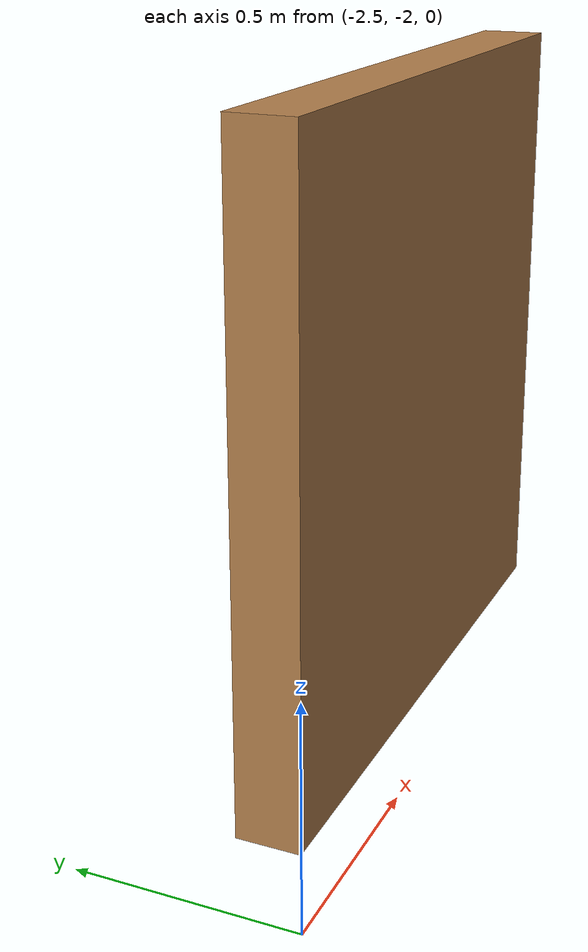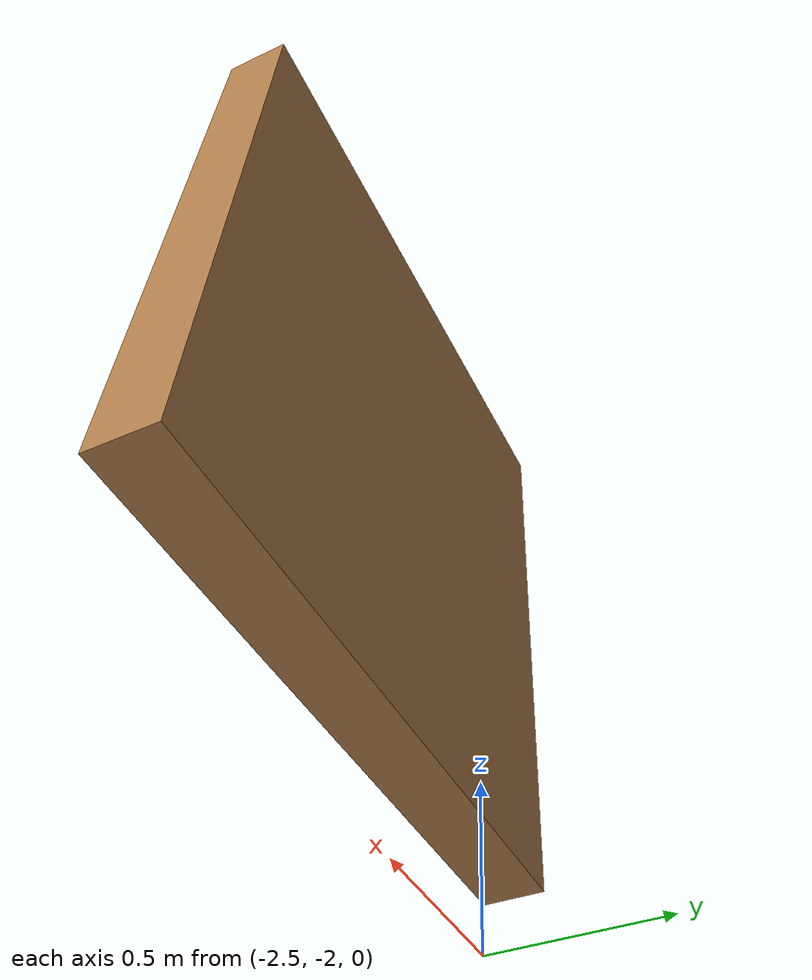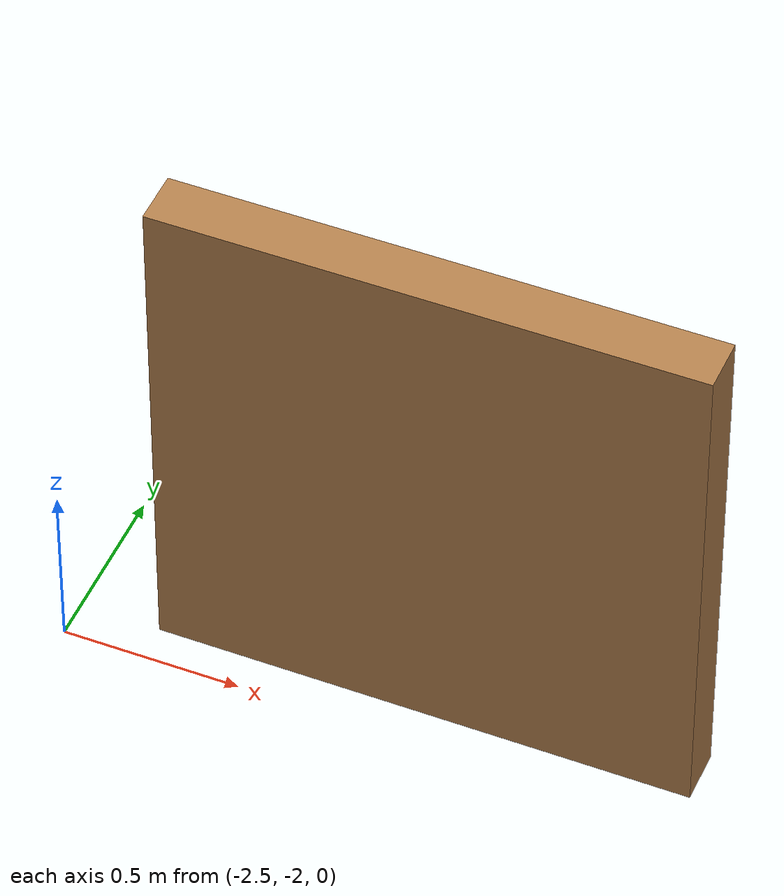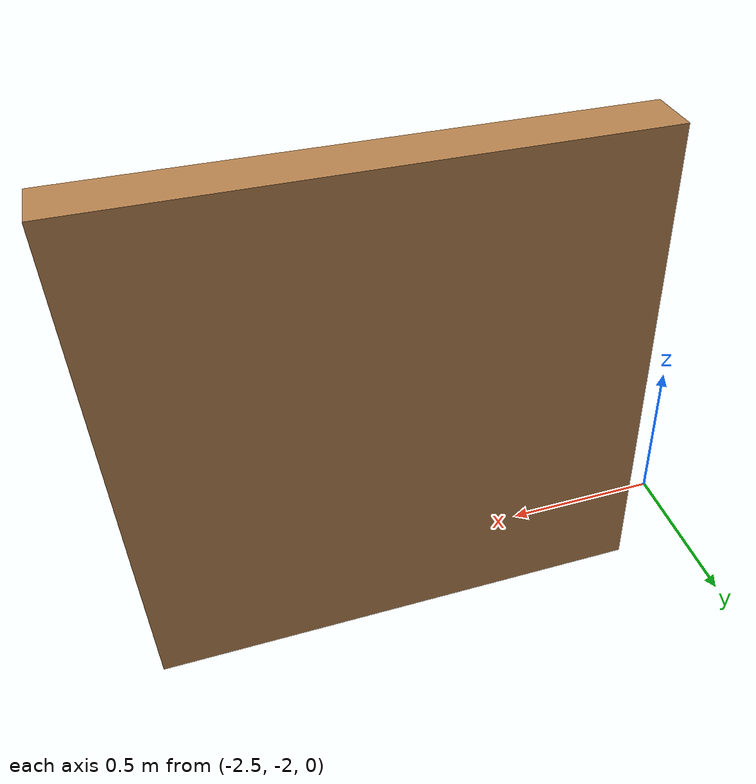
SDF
<?xml version='1.0'?>
<sdf version='1.6'>
  <model name='woll_ho'>
    <pose frame=''>-1.52374 -1.82065 0 0 -0 0</pose>
    <link name='Wall_47'>
      <collision name='Wall_47_Collision'>
        <geometry>
          <box>
            <size>1.5 0.15 1.5</size>
          </box>
        </geometry>
        <pose frame=''>0 0 0.75 0 -0 0</pose>
      </collision>
      <visual name='Wall_47_Visual'>
        <pose frame=''>0 0 0.75 0 -0 0</pose>
        <geometry>
          <box>
            <size>1.5 0.15 1.5</size>
          </box>
        </geometry>
        <material>
          <script>
            <uri>file://media/materials/scripts/gazebo.material</uri>
            <name>Gazebo/Wood</name>
          </script>
          <ambient>1 1 1 1</ambient>
        </material>
        <meta>
          <layer>0</layer>
        </meta>
      </visual>
      <pose frame=''>0 0 0 0 -0 3.14159</pose>
    </link>
    <static>1</static>
  </model>
</sdf>
